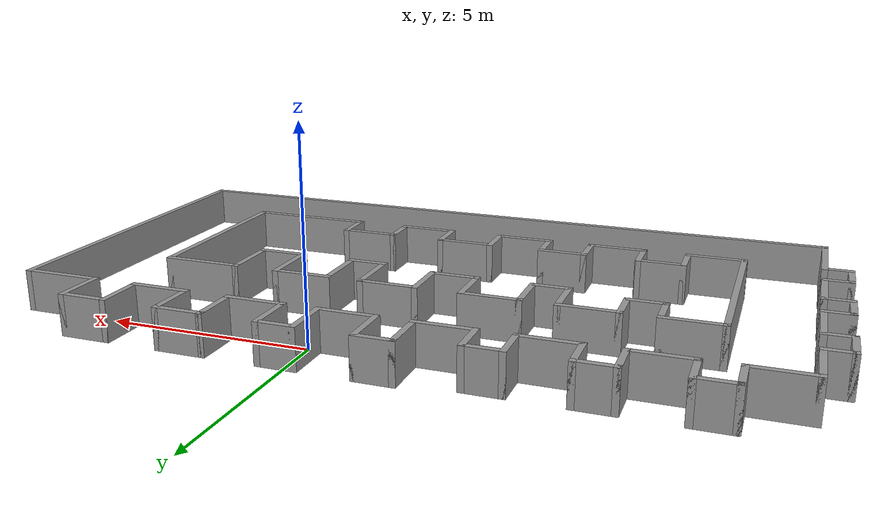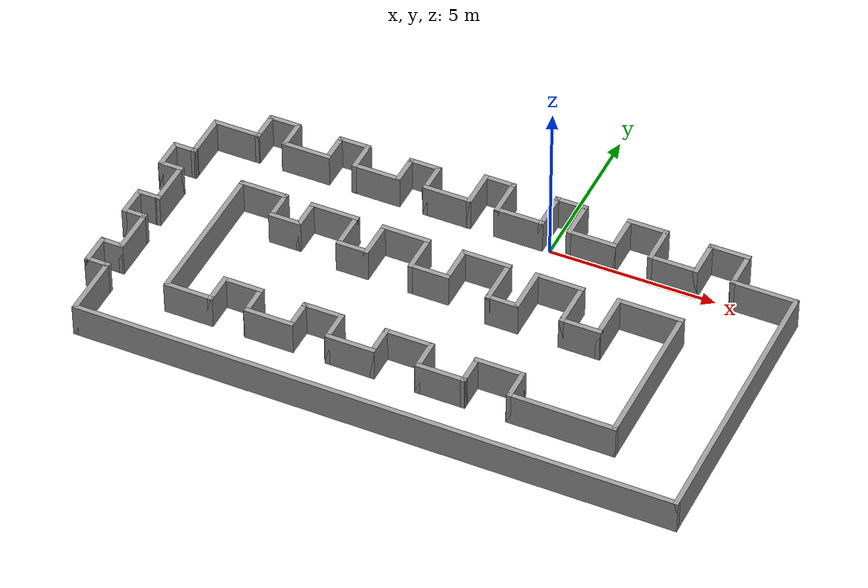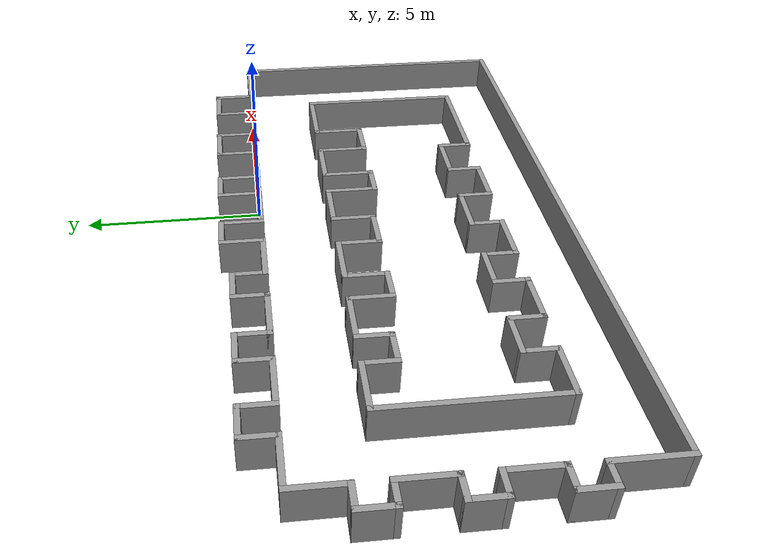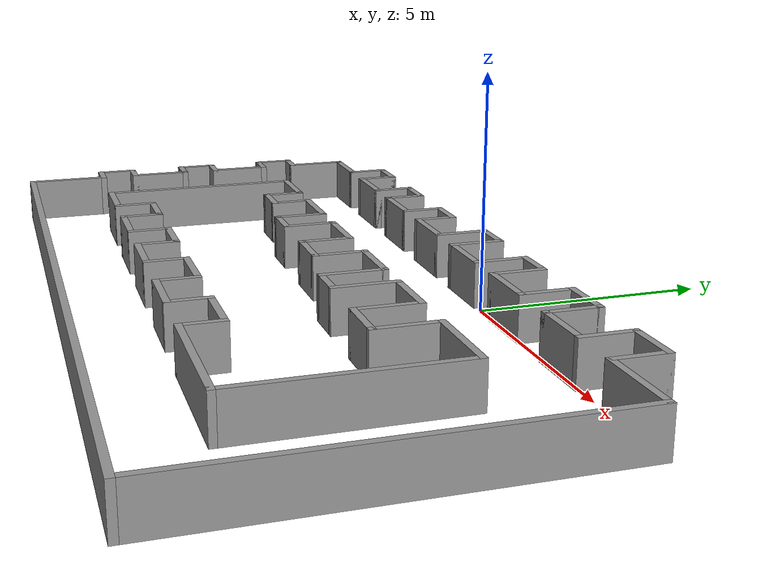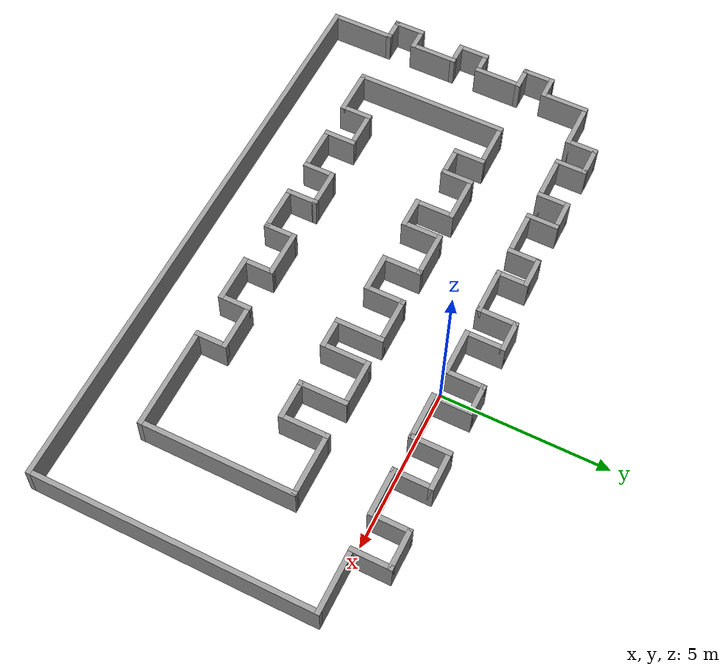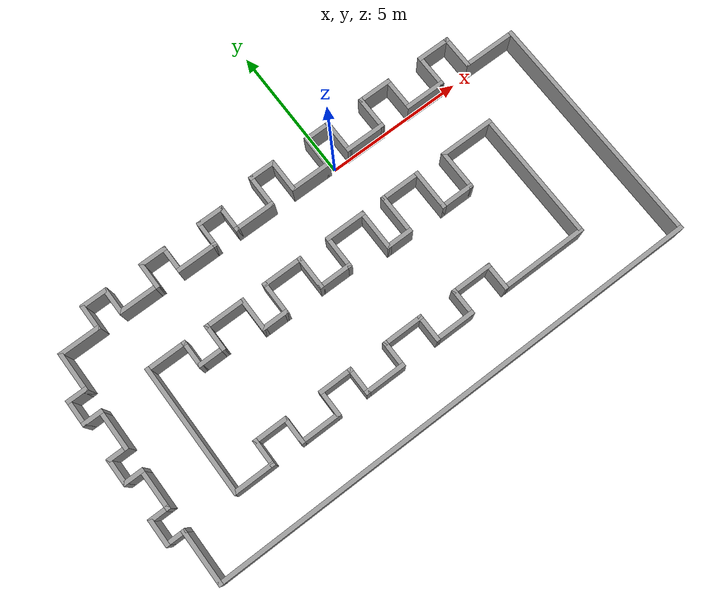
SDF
<?xml version='1.0'?>
<sdf version='1.6'>
  <model name='park'>
    <pose frame=''>-1.833 -3.683 0 0 -0 0</pose>
    <link name='Wall_1'>
      <collision name='Wall_1_Collision'>
        <geometry>
          <box>
            <size>17.9 0.15 1</size>
          </box>
        </geometry>
        <pose frame=''>0 0 0.5 0 -0 0</pose>
      </collision>
      <visual name='Wall_1_Visual'>
        <pose frame=''>0 0 0.5 0 -0 0</pose>
        <geometry>
          <box>
            <size>17.9 0.15 1</size>
          </box>
        </geometry>
        <material>
          <script>
            <uri>file://media/materials/scripts/gazebo.material</uri>
            <name>Gazebo/Grey</name>
          </script>
          <ambient>1 1 1 1</ambient>
        </material>
        <meta>
          <layer>0</layer>
        </meta>
      </visual>
      <pose frame=''>0.3 -4.775 0 0 -0 0</pose>
    </link>
    <link name='Wall_10'>
      <collision name='Wall_10_Collision'>
        <geometry>
          <box>
            <size>0.75 0.15 1.0</size>
          </box>
        </geometry>
        <pose frame=''>0 0 0.5 0 -0 0</pose>
      </collision>
      <visual name='Wall_10_Visual'>
        <pose frame=''>0 0 0.5 0 -0 0</pose>
        <geometry>
          <box>
            <size>0.75 0.15 1.0</size>
          </box>
        </geometry>
        <material>
          <script>
            <uri>file://media/materials/scripts/gazebo.material</uri>
            <name>Gazebo/Grey</name>
          </script>
          <ambient>1 1 1 1</ambient>
        </material>
        <meta>
          <layer>0</layer>
        </meta>
      </visual>
      <pose frame=''>-8.875 -2.075 0 0 -0 0</pose>
    </link>
    <link name='Wall_100'>
      <collision name='Wall_100_Collision'>
        <geometry>
          <box>
            <size>1.5 0.15 1.0</size>
          </box>
        </geometry>
        <pose frame=''>0 0 0.5 0 -0 0</pose>
      </collision>
      <visual name='Wall_100_Visual'>
        <pose frame=''>0 0 0.5 0 -0 0</pose>
        <geometry>
          <box>
            <size>1.5 0.15 1.0</size>
          </box>
        </geometry>
        <material>
          <script>
            <uri>file://media/materials/scripts/gazebo.material</uri>
            <name>Gazebo/Grey</name>
          </script>
          <ambient>1 1 1 1</ambient>
        </material>
        <meta>
          <layer>0</layer>
        </meta>
      </visual>
      <pose frame=''>3.675 1 0 0 -0 -1.5708</pose>
    </link>
    <link name='Wall_101'>
      <collision name='Wall_101_Collision'>
        <geometry>
          <box>
            <size>1.25 0.15 1.0</size>
          </box>
        </geometry>
        <pose frame=''>0 0 0.5 0 -0 0</pose>
      </collision>
      <visual name='Wall_101_Visual'>
        <pose frame=''>0 0 0.5 0 -0 0</pose>
        <geometry>
          <box>
            <size>1.25 0.15 1.0</size>
          </box>
        </geometry>
        <material>
          <script>
            <uri>file://media/materials/scripts/gazebo.material</uri>
            <name>Gazebo/Grey</name>
          </script>
          <ambient>1 1 1 1</ambient>
        </material>
        <meta>
          <layer>0</layer>
        </meta>
      </visual>
      <pose frame=''>4.225 0.325 0 0 -0 0</pose>
    </link>
    <link name='Wall_102'>
      <collision name='Wall_102_Collision'>
        <geometry>
          <box>
            <size>1.5 0.15 1.0</size>
          </box>
        </geometry>
        <pose frame=''>0 0 0.5 0 -0 0</pose>
      </collision>
      <visual name='Wall_102_Visual'>
        <pose frame=''>0 0 0.5 0 -0 0</pose>
        <geometry>
          <box>
            <size>1.5 0.15 1.0</size>
          </box>
        </geometry>
        <material>
          <script>
            <uri>file://media/materials/scripts/gazebo.material</uri>
            <name>Gazebo/Grey</name>
          </script>
          <ambient>1 1 1 1</ambient>
        </material>
        <meta>
          <layer>0</layer>
        </meta>
      </visual>
      <pose frame=''>4.775 1 0 0 -0 1.5708</pose>
    </link>
    <link name='Wall_103'>
      <collision name='Wall_103_Collision'>
        <geometry>
          <box>
            <size>2 0.15 1.0</size>
          </box>
        </geometry>
        <pose frame=''>0 0 0.5 0 -0 0</pose>
      </collision>
      <visual name='Wall_103_Visual'>
        <pose frame=''>0 0 0.5 0 -0 0</pose>
        <geometry>
          <box>
            <size>2 0.15 1.0</size>
          </box>
        </geometry>
        <material>
          <script>
            <uri>file://media/materials/scripts/gazebo.material</uri>
            <name>Gazebo/Grey</name>
          </script>
          <ambient>1 1 1 1</ambient>
        </material>
        <meta>
          <layer>0</layer>
        </meta>
      </visual>
      <pose frame=''>5.7 1.675 0 0 -0 0</pose>
    </link>
    <link name='Wall_11'>
      <collision name='Wall_11_Collision'>
        <geometry>
          <box>
            <size>1.5 0.15 1.0</size>
          </box>
        </geometry>
        <pose frame=''>0 0 0.5 0 -0 0</pose>
      </collision>
      <visual name='Wall_11_Visual'>
        <pose frame=''>0 0 0.5 0 -0 0</pose>
        <geometry>
          <box>
            <size>1.5 0.15 1.0</size>
          </box>
        </geometry>
        <material>
          <script>
            <uri>file://media/materials/scripts/gazebo.material</uri>
            <name>Gazebo/Grey</name>
          </script>
          <ambient>1 1 1 1</ambient>
        </material>
        <meta>
          <layer>0</layer>
        </meta>
      </visual>
      <pose frame=''>-8.575 -1.4 0 0 -0 1.5708</pose>
    </link>
    <link name='Wall_12'>
      <collision name='Wall_12_Collision'>
        <geometry>
          <box>
            <size>0.75 0.15 1.0</size>
          </box>
        </geometry>
        <pose frame=''>0 0 0.5 0 -0 0</pose>
      </collision>
      <visual name='Wall_12_Visual'>
        <pose frame=''>0 0 0.5 0 -0 0</pose>
        <geometry>
          <box>
            <size>0.75 0.15 1.0</size>
          </box>
        </geometry>
        <material>
          <script>
            <uri>file://media/materials/scripts/gazebo.material</uri>
            <name>Gazebo/Grey</name>
          </script>
          <ambient>1 1 1 1</ambient>
        </material>
        <meta>
          <layer>0</layer>
        </meta>
      </visual>
      <pose frame=''>-8.875 -0.725 0 0 -0 3.14159</pose>
    </link>
    <link name='Wall_13'>
      <collision name='Wall_13_Collision'>
        <geometry>
          <box>
            <size>1 0.15 1.0</size>
          </box>
        </geometry>
        <pose frame=''>0 0 0.5 0 -0 0</pose>
      </collision>
      <visual name='Wall_13_Visual'>
        <pose frame=''>0 0 0.5 0 -0 0</pose>
        <geometry>
          <box>
            <size>1 0.15 1.0</size>
          </box>
        </geometry>
        <material>
          <script>
            <uri>file://media/materials/scripts/gazebo.material</uri>
            <name>Gazebo/Grey</name>
          </script>
          <ambient>1 1 1 1</ambient>
        </material>
        <meta>
          <layer>0</layer>
        </meta>
      </visual>
      <pose frame=''>-9.175 -0.3 0 0 -0 1.5708</pose>
    </link>
    <link name='Wall_14'>
      <collision name='Wall_14_Collision'>
        <geometry>
          <box>
            <size>0.75 0.15 1.0</size>
          </box>
        </geometry>
        <pose frame=''>0 0 0.5 0 -0 0</pose>
      </collision>
      <visual name='Wall_14_Visual'>
        <pose frame=''>0 0 0.5 0 -0 0</pose>
        <geometry>
          <box>
            <size>0.75 0.15 1.0</size>
          </box>
        </geometry>
        <material>
          <script>
            <uri>file://media/materials/scripts/gazebo.material</uri>
            <name>Gazebo/Grey</name>
          </script>
          <ambient>1 1 1 1</ambient>
        </material>
        <meta>
          <layer>0</layer>
        </meta>
      </visual>
      <pose frame=''>-8.875 0.125 0 0 -0 0</pose>
    </link>
    <link name='Wall_15'>
      <collision name='Wall_15_Collision'>
        <geometry>
          <box>
            <size>1.5 0.15 1.0</size>
          </box>
        </geometry>
        <pose frame=''>0 0 0.5 0 -0 0</pose>
      </collision>
      <visual name='Wall_15_Visual'>
        <pose frame=''>0 0 0.5 0 -0 0</pose>
        <geometry>
          <box>
            <size>1.5 0.15 1.0</size>
          </box>
        </geometry>
        <material>
          <script>
            <uri>file://media/materials/scripts/gazebo.material</uri>
            <name>Gazebo/Grey</name>
          </script>
          <ambient>1 1 1 1</ambient>
        </material>
        <meta>
          <layer>0</layer>
        </meta>
      </visual>
      <pose frame=''>-8.575 0.800001 0 0 -0 1.5708</pose>
    </link>
    <link name='Wall_17'>
      <collision name='Wall_17_Collision'>
        <geometry>
          <box>
            <size>0.75 0.15 1.0</size>
          </box>
        </geometry>
        <pose frame=''>0 0 0.5 0 -0 0</pose>
      </collision>
      <visual name='Wall_17_Visual'>
        <pose frame=''>0 0 0.5 0 -0 0</pose>
        <geometry>
          <box>
            <size>0.75 0.15 1.0</size>
          </box>
        </geometry>
        <material>
          <script>
            <uri>file://media/materials/scripts/gazebo.material</uri>
            <name>Gazebo/Grey</name>
          </script>
          <ambient>1 1 1 1</ambient>
        </material>
        <meta>
          <layer>0</layer>
        </meta>
      </visual>
      <pose frame=''>-8.875 1.475 0 0 -0 3.14159</pose>
    </link>
    <link name='Wall_18'>
      <collision name='Wall_18_Collision'>
        <geometry>
          <box>
            <size>1 0.15 1.0</size>
          </box>
        </geometry>
        <pose frame=''>0 0 0.5 0 -0 0</pose>
      </collision>
      <visual name='Wall_18_Visual'>
        <pose frame=''>0 0 0.5 0 -0 0</pose>
        <geometry>
          <box>
            <size>1 0.15 1.0</size>
          </box>
        </geometry>
        <material>
          <script>
            <uri>file://media/materials/scripts/gazebo.material</uri>
            <name>Gazebo/Grey</name>
          </script>
          <ambient>1 1 1 1</ambient>
        </material>
        <meta>
          <layer>0</layer>
        </meta>
      </visual>
      <pose frame=''>-9.175 1.9 0 0 -0 1.5708</pose>
    </link>
    <link name='Wall_19'>
      <collision name='Wall_19_Collision'>
        <geometry>
          <box>
            <size>0.75 0.15 1.0</size>
          </box>
        </geometry>
        <pose frame=''>0 0 0.5 0 -0 0</pose>
      </collision>
      <visual name='Wall_19_Visual'>
        <pose frame=''>0 0 0.5 0 -0 0</pose>
        <geometry>
          <box>
            <size>0.75 0.15 1.0</size>
          </box>
        </geometry>
        <material>
          <script>
            <uri>file://media/materials/scripts/gazebo.material</uri>
            <name>Gazebo/Grey</name>
          </script>
          <ambient>1 1 1 1</ambient>
        </material>
        <meta>
          <layer>0</layer>
        </meta>
      </visual>
      <pose frame=''>-8.875 2.325 0 0 -0 0</pose>
    </link>
    <link name='Wall_20'>
      <collision name='Wall_20_Collision'>
        <geometry>
          <box>
            <size>1.5 0.15 1.0</size>
          </box>
        </geometry>
        <pose frame=''>0 0 0.5 0 -0 0</pose>
      </collision>
      <visual name='Wall_20_Visual'>
        <pose frame=''>0 0 0.5 0 -0 0</pose>
        <geometry>
          <box>
            <size>1.5 0.15 1.0</size>
          </box>
        </geometry>
        <material>
          <script>
            <uri>file://media/materials/scripts/gazebo.material</uri>
            <name>Gazebo/Grey</name>
          </script>
          <ambient>1 1 1 1</ambient>
        </material>
        <meta>
          <layer>0</layer>
        </meta>
      </visual>
      <pose frame=''>-8.575 3 0 0 -0 1.5708</pose>
    </link>
    <link name='Wall_21'>
      <collision name='Wall_21_Collision'>
        <geometry>
          <box>
            <size>1.5 0.15 1.0</size>
          </box>
        </geometry>
        <pose frame=''>0 0 0.5 0 -0 0</pose>
      </collision>
      <visual name='Wall_21_Visual'>
        <pose frame=''>0 0 0.5 0 -0 0</pose>
        <geometry>
          <box>
            <size>1.5 0.15 1.0</size>
          </box>
        </geometry>
        <material>
          <script>
            <uri>file://media/materials/scripts/gazebo.material</uri>
            <name>Gazebo/Grey</name>
          </script>
          <ambient>1 1 1 1</ambient>
        </material>
        <meta>
          <layer>0</layer>
        </meta>
      </visual>
      <pose frame=''>-7.9 3.675 0 0 -0 0</pose>
    </link>
    <link name='Wall_22'>
      <collision name='Wall_22_Collision'>
        <geometry>
          <box>
            <size>1 0.15 1.0</size>
          </box>
        </geometry>
        <pose frame=''>0 0 0.5 0 -0 0</pose>
      </collision>
      <visual name='Wall_22_Visual'>
        <pose frame=''>0 0 0.5 0 -0 0</pose>
        <geometry>
          <box>
            <size>1 0.15 1.0</size>
          </box>
        </geometry>
        <material>
          <script>
            <uri>file://media/materials/scripts/gazebo.material</uri>
            <name>Gazebo/Grey</name>
          </script>
          <ambient>1 1 1 1</ambient>
        </material>
        <meta>
          <layer>0</layer>
        </meta>
      </visual>
      <pose frame=''>-7.225 4.1 0 0 -0 1.5708</pose>
    </link>
    <link name='Wall_23'>
      <collision name='Wall_23_Collision'>
        <geometry>
          <box>
            <size>1 0.15 1.0</size>
          </box>
        </geometry>
        <pose frame=''>0 0 0.5 0 -0 0</pose>
      </collision>
      <visual name='Wall_23_Visual'>
        <pose frame=''>0 0 0.5 0 -0 0</pose>
        <geometry>
          <box>
            <size>1 0.15 1.0</size>
          </box>
        </geometry>
        <material>
          <script>
            <uri>file://media/materials/scripts/gazebo.material</uri>
            <name>Gazebo/Grey</name>
          </script>
          <ambient>1 1 1 1</ambient>
        </material>
        <meta>
          <layer>0</layer>
        </meta>
      </visual>
      <pose frame=''>-6.8 4.525 0 0 -0 0</pose>
    </link>
    <link name='Wall_24'>
      <collision name='Wall_24_Collision'>
        <geometry>
          <box>
            <size>1 0.15 1.0</size>
          </box>
        </geometry>
        <pose frame=''>0 0 0.5 0 -0 0</pose>
      </collision>
      <visual name='Wall_24_Visual'>
        <pose frame=''>0 0 0.5 0 -0 0</pose>
        <geometry>
          <box>
            <size>1 0.15 1.0</size>
          </box>
        </geometry>
        <material>
          <script>
            <uri>file://media/materials/scripts/gazebo.material</uri>
            <name>Gazebo/Grey</name>
          </script>
          <ambient>1 1 1 1</ambient>
        </material>
        <meta>
          <layer>0</layer>
        </meta>
      </visual>
      <pose frame=''>-6.375 4.1 0 0 -0 -1.5708</pose>
    </link>
    <link name='Wall_25'>
      <collision name='Wall_25_Collision'>
        <geometry>
          <box>
            <size>1.5 0.15 1.0</size>
          </box>
        </geometry>
        <pose frame=''>0 0 0.5 0 -0 0</pose>
      </collision>
      <visual name='Wall_25_Visual'>
        <pose frame=''>0 0 0.5 0 -0 0</pose>
        <geometry>
          <box>
            <size>1.5 0.15 1.0</size>
          </box>
        </geometry>
        <material>
          <script>
            <uri>file://media/materials/scripts/gazebo.material</uri>
            <name>Gazebo/Grey</name>
          </script>
          <ambient>1 1 1 1</ambient>
        </material>
        <meta>
          <layer>0</layer>
        </meta>
      </visual>
      <pose frame=''>-5.7 3.675 0 0 -0 0</pose>
    </link>
    <link name='Wall_27'>
      <collision name='Wall_27_Collision'>
        <geometry>
          <box>
            <size>1 0.15 1.0</size>
          </box>
        </geometry>
        <pose frame=''>0 0 0.5 0 -0 0</pose>
      </collision>
      <visual name='Wall_27_Visual'>
        <pose frame=''>0 0 0.5 0 -0 0</pose>
        <geometry>
          <box>
            <size>1 0.15 1.0</size>
          </box>
        </geometry>
        <material>
          <script>
            <uri>file://media/materials/scripts/gazebo.material</uri>
            <name>Gazebo/Grey</name>
          </script>
          <ambient>1 1 1 1</ambient>
        </material>
        <meta>
          <layer>0</layer>
        </meta>
      </visual>
      <pose frame=''>-5.025 4.1 0 0 -0 1.5708</pose>
    </link>
    <link name='Wall_28'>
      <collision name='Wall_28_Collision'>
        <geometry>
          <box>
            <size>1 0.15 1.0</size>
          </box>
        </geometry>
        <pose frame=''>0 0 0.5 0 -0 0</pose>
      </collision>
      <visual name='Wall_28_Visual'>
        <pose frame=''>0 0 0.5 0 -0 0</pose>
        <geometry>
          <box>
            <size>1 0.15 1.0</size>
          </box>
        </geometry>
        <material>
          <script>
            <uri>file://media/materials/scripts/gazebo.material</uri>
            <name>Gazebo/Grey</name>
          </script>
          <ambient>1 1 1 1</ambient>
        </material>
        <meta>
          <layer>0</layer>
        </meta>
      </visual>
      <pose frame=''>-4.6 4.525 0 0 -0 0</pose>
    </link>
    <link name='Wall_29'>
      <collision name='Wall_29_Collision'>
        <geometry>
          <box>
            <size>1 0.15 1.0</size>
          </box>
        </geometry>
        <pose frame=''>0 0 0.5 0 -0 0</pose>
      </collision>
      <visual name='Wall_29_Visual'>
        <pose frame=''>0 0 0.5 0 -0 0</pose>
        <geometry>
          <box>
            <size>1 0.15 1.0</size>
          </box>
        </geometry>
        <material>
          <script>
            <uri>file://media/materials/scripts/gazebo.material</uri>
            <name>Gazebo/Grey</name>
          </script>
          <ambient>1 1 1 1</ambient>
        </material>
        <meta>
          <layer>0</layer>
        </meta>
      </visual>
      <pose frame=''>-4.175 4.1 0 0 -0 -1.5708</pose>
    </link>
    <link name='Wall_30'>
      <collision name='Wall_30_Collision'>
        <geometry>
          <box>
            <size>1.5 0.15 1.0</size>
          </box>
        </geometry>
        <pose frame=''>0 0 0.5 0 -0 0</pose>
      </collision>
      <visual name='Wall_30_Visual'>
        <pose frame=''>0 0 0.5 0 -0 0</pose>
        <geometry>
          <box>
            <size>1.5 0.15 1.0</size>
          </box>
        </geometry>
        <material>
          <script>
            <uri>file://media/materials/scripts/gazebo.material</uri>
            <name>Gazebo/Grey</name>
          </script>
          <ambient>1 1 1 1</ambient>
        </material>
        <meta>
          <layer>0</layer>
        </meta>
      </visual>
      <pose frame=''>-3.5 3.675 0 0 -0 0</pose>
    </link>
    <link name='Wall_31'>
      <collision name='Wall_31_Collision'>
        <geometry>
          <box>
            <size>1 0.15 1.0</size>
          </box>
        </geometry>
        <pose frame=''>0 0 0.5 0 -0 0</pose>
      </collision>
      <visual name='Wall_31_Visual'>
        <pose frame=''>0 0 0.5 0 -0 0</pose>
        <geometry>
          <box>
            <size>1 0.15 1.0</size>
          </box>
        </geometry>
        <material>
          <script>
            <uri>file://media/materials/scripts/gazebo.material</uri>
            <name>Gazebo/Grey</name>
          </script>
          <ambient>1 1 1 1</ambient>
        </material>
        <meta>
          <layer>0</layer>
        </meta>
      </visual>
      <pose frame=''>-2.825 4.1 0 0 -0 1.5708</pose>
    </link>
    <link name='Wall_32'>
      <collision name='Wall_32_Collision'>
        <geometry>
          <box>
            <size>1 0.15 1.0</size>
          </box>
        </geometry>
        <pose frame=''>0 0 0.5 0 -0 0</pose>
      </collision>
      <visual name='Wall_32_Visual'>
        <pose frame=''>0 0 0.5 0 -0 0</pose>
        <geometry>
          <box>
            <size>1 0.15 1.0</size>
          </box>
        </geometry>
        <material>
          <script>
            <uri>file://media/materials/scripts/gazebo.material</uri>
            <name>Gazebo/Grey</name>
          </script>
          <ambient>1 1 1 1</ambient>
        </material>
        <meta>
          <layer>0</layer>
        </meta>
      </visual>
      <pose frame=''>-2.4 4.525 0 0 -0 0</pose>
    </link>
    <link name='Wall_33'>
      <collision name='Wall_33_Collision'>
        <geometry>
          <box>
            <size>1 0.15 1.0</size>
          </box>
        </geometry>
        <pose frame=''>0 0 0.5 0 -0 0</pose>
      </collision>
      <visual name='Wall_33_Visual'>
        <pose frame=''>0 0 0.5 0 -0 0</pose>
        <geometry>
          <box>
            <size>1 0.15 1.0</size>
          </box>
        </geometry>
        <material>
          <script>
            <uri>file://media/materials/scripts/gazebo.material</uri>
            <name>Gazebo/Grey</name>
          </script>
          <ambient>1 1 1 1</ambient>
        </material>
        <meta>
          <layer>0</layer>
        </meta>
      </visual>
      <pose frame=''>-1.975 4.1 0 0 -0 -1.5708</pose>
    </link>
    <link name='Wall_34'>
      <collision name='Wall_34_Collision'>
        <geometry>
          <box>
            <size>1.5 0.15 1.0</size>
          </box>
        </geometry>
        <pose frame=''>0 0 0.5 0 -0 0</pose>
      </collision>
      <visual name='Wall_34_Visual'>
        <pose frame=''>0 0 0.5 0 -0 0</pose>
        <geometry>
          <box>
            <size>1.5 0.15 1.0</size>
          </box>
        </geometry>
        <material>
          <script>
            <uri>file://media/materials/scripts/gazebo.material</uri>
            <name>Gazebo/Grey</name>
          </script>
          <ambient>1 1 1 1</ambient>
        </material>
        <meta>
          <layer>0</layer>
        </meta>
      </visual>
      <pose frame=''>-1.3 3.675 0 0 -0 0</pose>
    </link>
    <link name='Wall_35'>
      <collision name='Wall_35_Collision'>
        <geometry>
          <box>
            <size>1.25 0.15 1.0</size>
          </box>
        </geometry>
        <pose frame=''>0 0 0.5 0 -0 0</pose>
      </collision>
      <visual name='Wall_35_Visual'>
        <pose frame=''>0 0 0.5 0 -0 0</pose>
        <geometry>
          <box>
            <size>1.25 0.15 1.0</size>
          </box>
        </geometry>
        <material>
          <script>
            <uri>file://media/materials/scripts/gazebo.material</uri>
            <name>Gazebo/Grey</name>
          </script>
          <ambient>1 1 1 1</ambient>
        </material>
        <meta>
          <layer>0</layer>
        </meta>
      </visual>
      <pose frame=''>-0.625 4.225 0 0 -0 1.5708</pose>
    </link>
    <link name='Wall_36'>
      <collision name='Wall_36_Collision'>
        <geometry>
          <box>
            <size>1 0.15 1.0</size>
          </box>
        </geometry>
        <pose frame=''>0 0 0.5 0 -0 0</pose>
      </collision>
      <visual name='Wall_36_Visual'>
        <pose frame=''>0 0 0.5 0 -0 0</pose>
        <geometry>
          <box>
            <size>1 0.15 1.0</size>
          </box>
        </geometry>
        <material>
          <script>
            <uri>file://media/materials/scripts/gazebo.material</uri>
            <name>Gazebo/Grey</name>
          </script>
          <ambient>1 1 1 1</ambient>
        </material>
        <meta>
          <layer>0</layer>
        </meta>
      </visual>
      <pose frame=''>-0.2 4.775 0 0 -0 0</pose>
    </link>
    <link name='Wall_37'>
      <collision name='Wall_37_Collision'>
        <geometry>
          <box>
            <size>1.25 0.15 1.0</size>
          </box>
        </geometry>
        <pose frame=''>0 0 0.5 0 -0 0</pose>
      </collision>
      <visual name='Wall_37_Visual'>
        <pose frame=''>0 0 0.5 0 -0 0</pose>
        <geometry>
          <box>
            <size>1.25 0.15 1.0</size>
          </box>
        </geometry>
        <material>
          <script>
            <uri>file://media/materials/scripts/gazebo.material</uri>
            <name>Gazebo/Grey</name>
          </script>
          <ambient>1 1 1 1</ambient>
        </material>
        <meta>
          <layer>0</layer>
        </meta>
      </visual>
      <pose frame=''>0.225 4.225 0 0 -0 -1.5708</pose>
    </link>
    <link name='Wall_38'>
      <collision name='Wall_38_Collision'>
        <geometry>
          <box>
            <size>1.5 0.15 1.0</size>
          </box>
        </geometry>
        <pose frame=''>0 0 0.5 0 -0 0</pose>
      </collision>
      <visual name='Wall_38_Visual'>
        <pose frame=''>0 0 0.5 0 -0 0</pose>
        <geometry>
          <box>
            <size>1.5 0.15 1.0</size>
          </box>
        </geometry>
        <material>
          <script>
            <uri>file://media/materials/scripts/gazebo.material</uri>
            <name>Gazebo/Grey</name>
          </script>
          <ambient>1 1 1 1</ambient>
        </material>
        <meta>
          <layer>0</layer>
        </meta>
      </visual>
      <pose frame=''>0.9 3.675 0 0 -0 0</pose>
    </link>
    <link name='Wall_39'>
      <collision name='Wall_39_Collision'>
        <geometry>
          <box>
            <size>1.25 0.15 1.0</size>
          </box>
        </geometry>
        <pose frame=''>0 0 0.5 0 -0 0</pose>
      </collision>
      <visual name='Wall_39_Visual'>
        <pose frame=''>0 0 0.5 0 -0 0</pose>
        <geometry>
          <box>
            <size>1.25 0.15 1.0</size>
          </box>
        </geometry>
        <material>
          <script>
            <uri>file://media/materials/scripts/gazebo.material</uri>
            <name>Gazebo/Grey</name>
          </script>
          <ambient>1 1 1 1</ambient>
        </material>
        <meta>
          <layer>0</layer>
        </meta>
      </visual>
      <pose frame=''>1.575 4.225 0 0 -0 1.5708</pose>
    </link>
    <link name='Wall_40'>
      <collision name='Wall_40_Collision'>
        <geometry>
          <box>
            <size>1 0.15 1.0</size>
          </box>
        </geometry>
        <pose frame=''>0 0 0.5 0 -0 0</pose>
      </collision>
      <visual name='Wall_40_Visual'>
        <pose frame=''>0 0 0.5 0 -0 0</pose>
        <geometry>
          <box>
            <size>1 0.15 1.0</size>
          </box>
        </geometry>
        <material>
          <script>
            <uri>file://media/materials/scripts/gazebo.material</uri>
            <name>Gazebo/Grey</name>
          </script>
          <ambient>1 1 1 1</ambient>
        </material>
        <meta>
          <layer>0</layer>
        </meta>
      </visual>
      <pose frame=''>2 4.775 0 0 -0 0</pose>
    </link>
    <link name='Wall_41'>
      <collision name='Wall_41_Collision'>
        <geometry>
          <box>
            <size>1.25 0.15 1.0</size>
          </box>
        </geometry>
        <pose frame=''>0 0 0.5 0 -0 0</pose>
      </collision>
      <visual name='Wall_41_Visual'>
        <pose frame=''>0 0 0.5 0 -0 0</pose>
        <geometry>
          <box>
            <size>1.25 0.15 1.0</size>
          </box>
        </geometry>
        <material>
          <script>
            <uri>file://media/materials/scripts/gazebo.material</uri>
            <name>Gazebo/Grey</name>
          </script>
          <ambient>1 1 1 1</ambient>
        </material>
        <meta>
          <layer>0</layer>
        </meta>
      </visual>
      <pose frame=''>2.425 4.225 0 0 -0 -1.5708</pose>
    </link>
    <link name='Wall_42'>
      <collision name='Wall_42_Collision'>
        <geometry>
          <box>
            <size>1.5 0.15 1.0</size>
          </box>
        </geometry>
        <pose frame=''>0 0 0.5 0 -0 0</pose>
      </collision>
      <visual name='Wall_42_Visual'>
        <pose frame=''>0 0 0.5 0 -0 0</pose>
        <geometry>
          <box>
            <size>1.5 0.15 1.0</size>
          </box>
        </geometry>
        <material>
          <script>
            <uri>file://media/materials/scripts/gazebo.material</uri>
            <name>Gazebo/Grey</name>
          </script>
          <ambient>1 1 1 1</ambient>
        </material>
        <meta>
          <layer>0</layer>
        </meta>
      </visual>
      <pose frame=''>3.1 3.675 0 0 -0 0</pose>
    </link>
    <link name='Wall_43'>
      <collision name='Wall_43_Collision'>
        <geometry>
          <box>
            <size>1.25 0.15 1.0</size>
          </box>
        </geometry>
        <pose frame=''>0 0 0.5 0 -0 0</pose>
      </collision>
      <visual name='Wall_43_Visual'>
        <pose frame=''>0 0 0.5 0 -0 0</pose>
        <geometry>
          <box>
            <size>1.25 0.15 1.0</size>
          </box>
        </geometry>
        <material>
          <script>
            <uri>file://media/materials/scripts/gazebo.material</uri>
            <name>Gazebo/Grey</name>
          </script>
          <ambient>1 1 1 1</ambient>
        </material>
        <meta>
          <layer>0</layer>
        </meta>
      </visual>
      <pose frame=''>3.775 4.225 0 0 -0 1.5708</pose>
    </link>
    <link name='Wall_44'>
      <collision name='Wall_44_Collision'>
        <geometry>
          <box>
            <size>1.25 0.15 1.0</size>
          </box>
        </geometry>
        <pose frame=''>0 0 0.5 0 -0 0</pose>
      </collision>
      <visual name='Wall_44_Visual'>
        <pose frame=''>0 0 0.5 0 -0 0</pose>
        <geometry>
          <box>
            <size>1.25 0.15 1.0</size>
          </box>
        </geometry>
        <material>
          <script>
            <uri>file://media/materials/scripts/gazebo.material</uri>
            <name>Gazebo/Grey</name>
          </script>
          <ambient>1 1 1 1</ambient>
        </material>
        <meta>
          <layer>0</layer>
        </meta>
      </visual>
      <pose frame=''>4.325 4.775 0 0 -0 0</pose>
    </link>
    <link name='Wall_45'>
      <collision name='Wall_45_Collision'>
        <geometry>
          <box>
            <size>1.25 0.15 1.0</size>
          </box>
        </geometry>
        <pose frame=''>0 0 0.5 0 -0 0</pose>
      </collision>
      <visual name='Wall_45_Visual'>
        <pose frame=''>0 0 0.5 0 -0 0</pose>
        <geometry>
          <box>
            <size>1.25 0.15 1.0</size>
          </box>
        </geometry>
        <material>
          <script>
            <uri>file://media/materials/scripts/gazebo.material</uri>
            <name>Gazebo/Grey</name>
          </script>
          <ambient>1 1 1 1</ambient>
        </material>
        <meta>
          <layer>0</layer>
        </meta>
      </visual>
      <pose frame=''>4.875 4.225 0 0 -0 -1.5708</pose>
    </link>
    <link name='Wall_46'>
      <collision name='Wall_46_Collision'>
        <geometry>
          <box>
            <size>1.5 0.15 1.0</size>
          </box>
        </geometry>
        <pose frame=''>0 0 0.5 0 -0 0</pose>
      </collision>
      <visual name='Wall_46_Visual'>
        <pose frame=''>0 0 0.5 0 -0 0</pose>
        <geometry>
          <box>
            <size>1.5 0.15 1.0</size>
          </box>
        </geometry>
        <material>
          <script>
            <uri>file://media/materials/scripts/gazebo.material</uri>
            <name>Gazebo/Grey</name>
          </script>
          <ambient>1 1 1 1</ambient>
        </material>
        <meta>
          <layer>0</layer>
        </meta>
      </visual>
      <pose frame=''>5.55 3.675 0 0 -0 0</pose>
    </link>
    <link name='Wall_47'>
      <collision name='Wall_47_Collision'>
        <geometry>
          <box>
            <size>1.25 0.15 1.0</size>
          </box>
        </geometry>
        <pose frame=''>0 0 0.5 0 -0 0</pose>
      </collision>
      <visual name='Wall_47_Visual'>
        <pose frame=''>0 0 0.5 0 -0 0</pose>
        <geometry>
          <box>
            <size>1.25 0.15 1.0</size>
          </box>
        </geometry>
        <material>
          <script>
            <uri>file://media/materials/scripts/gazebo.material</uri>
            <name>Gazebo/Grey</name>
          </script>
          <ambient>1 1 1 1</ambient>
        </material>
        <meta>
          <layer>0</layer>
        </meta>
      </visual>
      <pose frame=''>6.225 4.225 0 0 -0 1.5708</pose>
    </link>
    <link name='Wall_48'>
      <collision name='Wall_48_Collision'>
        <geometry>
          <box>
            <size>1.25 0.15 1.0</size>
          </box>
        </geometry>
        <pose frame=''>0 0 0.5 0 -0 0</pose>
      </collision>
      <visual name='Wall_48_Visual'>
        <pose frame=''>0 0 0.5 0 -0 0</pose>
        <geometry>
          <box>
            <size>1.25 0.15 1.0</size>
          </box>
        </geometry>
        <material>
          <script>
            <uri>file://media/materials/scripts/gazebo.material</uri>
            <name>Gazebo/Grey</name>
          </script>
          <ambient>1 1 1 1</ambient>
        </material>
        <meta>
          <layer>0</layer>
        </meta>
      </visual>
      <pose frame=''>6.775 4.775 0 0 -0 0</pose>
    </link>
    <link name='Wall_49'>
      <collision name='Wall_49_Collision'>
        <geometry>
          <box>
            <size>1.25 0.15 1.0</size>
          </box>
        </geometry>
        <pose frame=''>0 0 0.5 0 -0 0</pose>
      </collision>
      <visual name='Wall_49_Visual'>
        <pose frame=''>0 0 0.5 0 -0 0</pose>
        <geometry>
          <box>
            <size>1.25 0.15 1.0</size>
          </box>
        </geometry>
        <material>
          <script>
            <uri>file://media/materials/scripts/gazebo.material</uri>
            <name>Gazebo/Grey</name>
          </script>
          <ambient>1 1 1 1</ambient>
        </material>
        <meta>
          <layer>0</layer>
        </meta>
      </visual>
      <pose frame=''>7.325 4.225 0 0 -0 -1.5708</pose>
    </link>
    <link name='Wall_50'>
      <collision name='Wall_50_Collision'>
        <geometry>
          <box>
            <size>2 0.15 1.0</size>
          </box>
        </geometry>
        <pose frame=''>0 0 0.5 0 -0 0</pose>
      </collision>
      <visual name='Wall_50_Visual'>
        <pose frame=''>0 0 0.5 0 -0 0</pose>
        <geometry>
          <box>
            <size>2 0.15 1.0</size>
          </box>
        </geometry>
        <material>
          <script>
            <uri>file://media/materials/scripts/gazebo.material</uri>
            <name>Gazebo/Grey</name>
          </script>
          <ambient>1 1 1 1</ambient>
        </material>
        <meta>
          <layer>0</layer>
        </meta>
      </visual>
      <pose frame=''>8.25 3.675 0 0 -0 0</pose>
    </link>
    <link name='Wall_55'>
      <collision name='Wall_55_Collision'>
        <geometry>
          <box>
            <size>1.5 0.15 1.0</size>
          </box>
        </geometry>
        <pose frame=''>0 0 0.5 0 -0 0</pose>
      </collision>
      <visual name='Wall_55_Visual'>
        <pose frame=''>0 0 0.5 0 -0 0</pose>
        <geometry>
          <box>
            <size>1.5 0.15 1.0</size>
          </box>
        </geometry>
        <material>
          <script>
            <uri>file://media/materials/scripts/gazebo.material</uri>
            <name>Gazebo/Grey</name>
          </script>
          <ambient>1 1 1 1</ambient>
        </material>
        <meta>
          <layer>0</layer>
        </meta>
      </visual>
      <pose frame=''>-6.05 -2.925 0 0 -0 0</pose>
    </link>
    <link name='Wall_56'>
      <collision name='Wall_56_Collision'>
        <geometry>
          <box>
            <size>1 0.15 1.0</size>
          </box>
        </geometry>
        <pose frame=''>0 0 0.5 0 -0 0</pose>
      </collision>
      <visual name='Wall_56_Visual'>
        <pose frame=''>0 0 0.5 0 -0 0</pose>
        <geometry>
          <box>
            <size>1 0.15 1.0</size>
          </box>
        </geometry>
        <material>
          <script>
            <uri>file://media/materials/scripts/gazebo.material</uri>
            <name>Gazebo/Grey</name>
          </script>
          <ambient>1 1 1 1</ambient>
        </material>
        <meta>
          <layer>0</layer>
        </meta>
      </visual>
      <pose frame=''>-5.375 -2.5 0 0 -0 1.5708</pose>
    </link>
    <link name='Wall_57'>
      <collision name='Wall_57_Collision'>
        <geometry>
          <box>
            <size>1.25 0.15 1.0</size>
          </box>
        </geometry>
        <pose frame=''>0 0 0.5 0 -0 0</pose>
      </collision>
      <visual name='Wall_57_Visual'>
        <pose frame=''>0 0 0.5 0 -0 0</pose>
        <geometry>
          <box>
            <size>1.25 0.15 1.0</size>
          </box>
        </geometry>
        <material>
          <script>
            <uri>file://media/materials/scripts/gazebo.material</uri>
            <name>Gazebo/Grey</name>
          </script>
          <ambient>1 1 1 1</ambient>
        </material>
        <meta>
          <layer>0</layer>
        </meta>
      </visual>
      <pose frame=''>-4.825 -2.075 0 0 -0 0</pose>
    </link>
    <link name='Wall_58'>
      <collision name='Wall_58_Collision'>
        <geometry>
          <box>
            <size>1 0.15 1.0</size>
          </box>
        </geometry>
        <pose frame=''>0 0 0.5 0 -0 0</pose>
      </collision>
      <visual name='Wall_58_Visual'>
        <pose frame=''>0 0 0.5 0 -0 0</pose>
        <geometry>
          <box>
            <size>1 0.15 1.0</size>
          </box>
        </geometry>
        <material>
          <script>
            <uri>file://media/materials/scripts/gazebo.material</uri>
            <name>Gazebo/Grey</name>
          </script>
          <ambient>1 1 1 1</ambient>
        </material>
        <meta>
          <layer>0</layer>
        </meta>
      </visual>
      <pose frame=''>-4.275 -2.5 0 0 -0 -1.5708</pose>
    </link>
    <link name='Wall_59'>
      <collision name='Wall_59_Collision'>
        <geometry>
          <box>
            <size>1.5 0.15 1.0</size>
          </box>
        </geometry>
        <pose frame=''>0 0 0.5 0 -0 0</pose>
      </collision>
      <visual name='Wall_59_Visual'>
        <pose frame=''>0 0 0.5 0 -0 0</pose>
        <geometry>
          <box>
            <size>1.5 0.15 1.0</size>
          </box>
        </geometry>
        <material>
          <script>
            <uri>file://media/materials/scripts/gazebo.material</uri>
            <name>Gazebo/Grey</name>
          </script>
          <ambient>1 1 1 1</ambient>
        </material>
        <meta>
          <layer>0</layer>
        </meta>
      </visual>
      <pose frame=''>-3.6 -2.925 0 0 -0 0</pose>
    </link>
    <link name='Wall_6'>
      <collision name='Wall_6_Collision'>
        <geometry>
          <box>
            <size>2 0.15 1</size>
          </box>
        </geometry>
        <pose frame=''>0 0 0.5 0 -0 0</pose>
      </collision>
      <visual name='Wall_6_Visual'>
        <pose frame=''>0 0 0.5 0 -0 0</pose>
        <geometry>
          <box>
            <size>2 0.15 1</size>
          </box>
        </geometry>
        <material>
          <script>
            <uri>file://media/materials/scripts/gazebo.material</uri>
            <name>Gazebo/Grey</name>
          </script>
          <ambient>1 1 1 1</ambient>
        </material>
        <meta>
          <layer>0</layer>
        </meta>
      </visual>
      <pose frame=''>-8.575 -3.85 0 0 -0 1.5708</pose>
    </link>
    <link name='Wall_60'>
      <collision name='Wall_60_Collision'>
        <geometry>
          <box>
            <size>1 0.15 1.0</size>
          </box>
        </geometry>
        <pose frame=''>0 0 0.5 0 -0 0</pose>
      </collision>
      <visual name='Wall_60_Visual'>
        <pose frame=''>0 0 0.5 0 -0 0</pose>
        <geometry>
          <box>
            <size>1 0.15 1.0</size>
          </box>
        </geometry>
        <material>
          <script>
            <uri>file://media/materials/scripts/gazebo.material</uri>
            <name>Gazebo/Grey</name>
          </script>
          <ambient>1 1 1 1</ambient>
        </material>
        <meta>
          <layer>0</layer>
        </meta>
      </visual>
      <pose frame=''>-2.925 -2.5 0 0 -0 1.5708</pose>
    </link>
    <link name='Wall_61'>
      <collision name='Wall_61_Collision'>
        <geometry>
          <box>
            <size>1.25 0.15 1.0</size>
          </box>
        </geometry>
        <pose frame=''>0 0 0.5 0 -0 0</pose>
      </collision>
      <visual name='Wall_61_Visual'>
        <pose frame=''>0 0 0.5 0 -0 0</pose>
        <geometry>
          <box>
            <size>1.25 0.15 1.0</size>
          </box>
        </geometry>
        <material>
          <script>
            <uri>file://media/materials/scripts/gazebo.material</uri>
            <name>Gazebo/Grey</name>
          </script>
          <ambient>1 1 1 1</ambient>
        </material>
        <meta>
          <layer>0</layer>
        </meta>
      </visual>
      <pose frame=''>-2.375 -2.075 0 0 -0 0</pose>
    </link>
    <link name='Wall_62'>
      <collision name='Wall_62_Collision'>
        <geometry>
          <box>
            <size>1 0.15 1.0</size>
          </box>
        </geometry>
        <pose frame=''>0 0 0.5 0 -0 0</pose>
      </collision>
      <visual name='Wall_62_Visual'>
        <pose frame=''>0 0 0.5 0 -0 0</pose>
        <geometry>
          <box>
            <size>1 0.15 1.0</size>
          </box>
        </geometry>
        <material>
          <script>
            <uri>file://media/materials/scripts/gazebo.material</uri>
            <name>Gazebo/Grey</name>
          </script>
          <ambient>1 1 1 1</ambient>
        </material>
        <meta>
          <layer>0</layer>
        </meta>
      </visual>
      <pose frame=''>-1.825 -2.5 0 0 -0 -1.5708</pose>
    </link>
    <link name='Wall_63'>
      <collision name='Wall_63_Collision'>
        <geometry>
          <box>
            <size>1.5 0.15 1.0</size>
          </box>
        </geometry>
        <pose frame=''>0 0 0.5 0 -0 0</pose>
      </collision>
      <visual name='Wall_63_Visual'>
        <pose frame=''>0 0 0.5 0 -0 0</pose>
        <geometry>
          <box>
            <size>1.5 0.15 1.0</size>
          </box>
        </geometry>
        <material>
          <script>
            <uri>file://media/materials/scripts/gazebo.material</uri>
            <name>Gazebo/Grey</name>
          </script>
          <ambient>1 1 1 1</ambient>
        </material>
        <meta>
          <layer>0</layer>
        </meta>
      </visual>
      <pose frame=''>-1.15 -2.925 0 0 -0 0</pose>
    </link>
    <link name='Wall_64'>
      <collision name='Wall_64_Collision'>
        <geometry>
          <box>
            <size>1 0.15 1.0</size>
          </box>
        </geometry>
        <pose frame=''>0 0 0.5 0 -0 0</pose>
      </collision>
      <visual name='Wall_64_Visual'>
        <pose frame=''>0 0 0.5 0 -0 0</pose>
        <geometry>
          <box>
            <size>1 0.15 1.0</size>
          </box>
        </geometry>
        <material>
          <script>
            <uri>file://media/materials/scripts/gazebo.material</uri>
            <name>Gazebo/Grey</name>
          </script>
          <ambient>1 1 1 1</ambient>
        </material>
        <meta>
          <layer>0</layer>
        </meta>
      </visual>
      <pose frame=''>-0.475 -2.5 0 0 -0 1.5708</pose>
    </link>
    <link name='Wall_65'>
      <collision name='Wall_65_Collision'>
        <geometry>
          <box>
            <size>1.5 0.15 1.0</size>
          </box>
        </geometry>
        <pose frame=''>0 0 0.5 0 -0 0</pose>
      </collision>
      <visual name='Wall_65_Visual'>
        <pose frame=''>0 0 0.5 0 -0 0</pose>
        <geometry>
          <box>
            <size>1.5 0.15 1.0</size>
          </box>
        </geometry>
        <material>
          <script>
            <uri>file://media/materials/scripts/gazebo.material</uri>
            <name>Gazebo/Grey</name>
          </script>
          <ambient>1 1 1 1</ambient>
        </material>
        <meta>
          <layer>0</layer>
        </meta>
      </visual>
      <pose frame=''>0.2 -2.075 0 0 -0 0</pose>
    </link>
    <link name='Wall_66'>
      <collision name='Wall_66_Collision'>
        <geometry>
          <box>
            <size>1 0.15 1.0</size>
          </box>
        </geometry>
        <pose frame=''>0 0 0.5 0 -0 0</pose>
      </collision>
      <visual name='Wall_66_Visual'>
        <pose frame=''>0 0 0.5 0 -0 0</pose>
        <geometry>
          <box>
            <size>1 0.15 1.0</size>
          </box>
        </geometry>
        <material>
          <script>
            <uri>file://media/materials/scripts/gazebo.material</uri>
            <name>Gazebo/Grey</name>
          </script>
          <ambient>1 1 1 1</ambient>
        </material>
        <meta>
          <layer>0</layer>
        </meta>
      </visual>
      <pose frame=''>0.875 -2.5 0 0 -0 -1.5708</pose>
    </link>
    <link name='Wall_67'>
      <collision name='Wall_67_Collision'>
        <geometry>
          <box>
            <size>1.5 0.15 1.0</size>
          </box>
        </geometry>
        <pose frame=''>0 0 0.5 0 -0 0</pose>
      </collision>
      <visual name='Wall_67_Visual'>
        <pose frame=''>0 0 0.5 0 -0 0</pose>
        <geometry>
          <box>
            <size>1.5 0.15 1.0</size>
          </box>
        </geometry>
        <material>
          <script>
            <uri>file://media/materials/scripts/gazebo.material</uri>
            <name>Gazebo/Grey</name>
          </script>
          <ambient>1 1 1 1</ambient>
        </material>
        <meta>
          <layer>0</layer>
        </meta>
      </visual>
      <pose frame=''>1.55 -2.925 0 0 -0 0</pose>
    </link>
    <link name='Wall_68'>
      <collision name='Wall_68_Collision'>
        <geometry>
          <box>
            <size>1 0.15 1.0</size>
          </box>
        </geometry>
        <pose frame=''>0 0 0.5 0 -0 0</pose>
      </collision>
      <visual name='Wall_68_Visual'>
        <pose frame=''>0 0 0.5 0 -0 0</pose>
        <geometry>
          <box>
            <size>1 0.15 1.0</size>
          </box>
        </geometry>
        <material>
          <script>
            <uri>file://media/materials/scripts/gazebo.material</uri>
            <name>Gazebo/Grey</name>
          </script>
          <ambient>1 1 1 1</ambient>
        </material>
        <meta>
          <layer>0</layer>
        </meta>
      </visual>
      <pose frame=''>2.225 -2.5 0 0 -0 1.5708</pose>
    </link>
    <link name='Wall_69'>
      <collision name='Wall_69_Collision'>
        <geometry>
          <box>
            <size>1.5 0.15 1.0</size>
          </box>
        </geometry>
        <pose frame=''>0 0 0.5 0 -0 0</pose>
      </collision>
      <visual name='Wall_69_Visual'>
        <pose frame=''>0 0 0.5 0 -0 0</pose>
        <geometry>
          <box>
            <size>1.5 0.15 1.0</size>
          </box>
        </geometry>
        <material>
          <script>
            <uri>file://media/materials/scripts/gazebo.material</uri>
            <name>Gazebo/Grey</name>
          </script>
          <ambient>1 1 1 1</ambient>
        </material>
        <meta>
          <layer>0</layer>
        </meta>
      </visual>
      <pose frame=''>2.9 -2.075 0 0 -0 0</pose>
    </link>
    <link name='Wall_7'>
      <collision name='Wall_7_Collision'>
        <geometry>
          <box>
            <size>0.75 0.15 1</size>
          </box>
        </geometry>
        <pose frame=''>0 0 0.5 0 -0 0</pose>
      </collision>
      <visual name='Wall_7_Visual'>
        <pose frame=''>0 0 0.5 0 -0 0</pose>
        <geometry>
          <box>
            <size>0.75 0.15 1</size>
          </box>
        </geometry>
        <material>
          <script>
            <uri>file://media/materials/scripts/gazebo.material</uri>
            <name>Gazebo/Grey</name>
          </script>
          <ambient>1 1 1 1</ambient>
        </material>
        <meta>
          <layer>0</layer>
        </meta>
      </visual>
      <pose frame=''>-8.875 -2.925 0 0 -0 3.14159</pose>
    </link>
    <link name='Wall_70'>
      <collision name='Wall_70_Collision'>
        <geometry>
          <box>
            <size>1 0.15 1.0</size>
          </box>
        </geometry>
        <pose frame=''>0 0 0.5 0 -0 0</pose>
      </collision>
      <visual name='Wall_70_Visual'>
        <pose frame=''>0 0 0.5 0 -0 0</pose>
        <geometry>
          <box>
            <size>1 0.15 1.0</size>
          </box>
        </geometry>
        <material>
          <script>
            <uri>file://media/materials/scripts/gazebo.material</uri>
            <name>Gazebo/Grey</name>
          </script>
          <ambient>1 1 1 1</ambient>
        </material>
        <meta>
          <layer>0</layer>
        </meta>
      </visual>
      <pose frame=''>3.575 -2.5 0 0 -0 -1.5708</pose>
    </link>
    <link name='Wall_71'>
      <collision name='Wall_71_Collision'>
        <geometry>
          <box>
            <size>3.2 0.15 1.0</size>
          </box>
        </geometry>
        <pose frame=''>0 0 0.5 0 -0 0</pose>
      </collision>
      <visual name='Wall_71_Visual'>
        <pose frame=''>0 0 0.5 0 -0 0</pose>
        <geometry>
          <box>
            <size>3.2 0.15 1.0</size>
          </box>
        </geometry>
        <material>
          <script>
            <uri>file://media/materials/scripts/gazebo.material</uri>
            <name>Gazebo/Grey</name>
          </script>
          <ambient>1 1 1 1</ambient>
        </material>
        <meta>
          <layer>0</layer>
        </meta>
      </visual>
      <pose frame=''>5.1 -2.925 0 0 -0 0</pose>
    </link>
    <link name='Wall_76'>
      <collision name='Wall_76_Collision'>
        <geometry>
          <box>
            <size>4.75 0.15 1.0</size>
          </box>
        </geometry>
        <pose frame=''>0 0 0.5 0 -0 0</pose>
      </collision>
      <visual name='Wall_76_Visual'>
        <pose frame=''>0 0 0.5 0 -0 0</pose>
        <geometry>
          <box>
            <size>4.75 0.15 1.0</size>
          </box>
        </geometry>
        <material>
          <script>
            <uri>file://media/materials/scripts/gazebo.material</uri>
            <name>Gazebo/Grey</name>
          </script>
          <ambient>1 1 1 1</ambient>
        </material>
        <meta>
          <layer>0</layer>
        </meta>
      </visual>
      <pose frame=''>-6.725 -0.625 0 0 -0 1.5708</pose>
    </link>
    <link name='Wall_79'>
      <collision name='Wall_79_Collision'>
        <geometry>
          <box>
            <size>4.75 0.15 1.0</size>
          </box>
        </geometry>
        <pose frame=''>0 0 0.5 0 -0 0</pose>
      </collision>
      <visual name='Wall_79_Visual'>
        <pose frame=''>0 0 0.5 0 -0 0</pose>
        <geometry>
          <box>
            <size>4.75 0.15 1.0</size>
          </box>
        </geometry>
        <material>
          <script>
            <uri>file://media/materials/scripts/gazebo.material</uri>
            <name>Gazebo/Grey</name>
          </script>
          <ambient>1 1 1 1</ambient>
        </material>
        <meta>
          <layer>0</layer>
        </meta>
      </visual>
      <pose frame=''>6.625 -0.625 0 0 -0 -1.5708</pose>
    </link>
    <link name='Wall_81'>
      <collision name='Wall_81_Collision'>
        <geometry>
          <box>
            <size>8.6 0.15 1.0</size>
          </box>
        </geometry>
        <pose frame=''>0 0 0.5 0 -0 0</pose>
      </collision>
      <visual name='Wall_81_Visual'>
        <pose frame=''>0 0 0.5 0 -0 0</pose>
        <geometry>
          <box>
            <size>8.6 0.15 1.0</size>
          </box>
        </geometry>
        <material>
          <script>
            <uri>file://media/materials/scripts/gazebo.material</uri>
            <name>Gazebo/Grey</name>
          </script>
          <ambient>1 1 1 1</ambient>
        </material>
        <meta>
          <layer>0</layer>
        </meta>
      </visual>
      <pose frame=''>9.175 -0.549999 0 0 -0 -1.5708</pose>
    </link>
    <link name='Wall_83'>
      <collision name='Wall_83_Collision'>
        <geometry>
          <box>
            <size>1.5 0.15 1.0</size>
          </box>
        </geometry>
        <pose frame=''>0 0 0.5 0 -0 0</pose>
      </collision>
      <visual name='Wall_83_Visual'>
        <pose frame=''>0 0 0.5 0 -0 0</pose>
        <geometry>
          <box>
            <size>1.5 0.15 1.0</size>
          </box>
        </geometry>
        <material>
          <script>
            <uri>file://media/materials/scripts/gazebo.material</uri>
            <name>Gazebo/Grey</name>
          </script>
          <ambient>1 1 1 1</ambient>
        </material>
        <meta>
          <layer>0</layer>
        </meta>
      </visual>
      <pose frame=''>-6.05 1.675 0 0 -0 0</pose>
    </link>
    <link name='Wall_84'>
      <collision name='Wall_84_Collision'>
        <geometry>
          <box>
            <size>1 0.15 1.0</size>
          </box>
        </geometry>
        <pose frame=''>0 0 0.5 0 -0 0</pose>
      </collision>
      <visual name='Wall_84_Visual'>
        <pose frame=''>0 0 0.5 0 -0 0</pose>
        <geometry>
          <box>
            <size>1 0.15 1.0</size>
          </box>
        </geometry>
        <material>
          <script>
            <uri>file://media/materials/scripts/gazebo.material</uri>
            <name>Gazebo/Grey</name>
          </script>
          <ambient>1 1 1 1</ambient>
        </material>
        <meta>
          <layer>0</layer>
        </meta>
      </visual>
      <pose frame=''>-5.375 1.25 0 0 -0 -1.5708</pose>
    </link>
    <link name='Wall_85'>
      <collision name='Wall_85_Collision'>
        <geometry>
          <box>
            <size>1 0.15 1.0</size>
          </box>
        </geometry>
        <pose frame=''>0 0 0.5 0 -0 0</pose>
      </collision>
      <visual name='Wall_85_Visual'>
        <pose frame=''>0 0 0.5 0 -0 0</pose>
        <geometry>
          <box>
            <size>1 0.15 1.0</size>
          </box>
        </geometry>
        <material>
          <script>
            <uri>file://media/materials/scripts/gazebo.material</uri>
            <name>Gazebo/Grey</name>
          </script>
          <ambient>1 1 1 1</ambient>
        </material>
        <meta>
          <layer>0</layer>
        </meta>
      </visual>
      <pose frame=''>-4.95 0.825 0 0 -0 0</pose>
    </link>
    <link name='Wall_86'>
      <collision name='Wall_86_Collision'>
        <geometry>
          <box>
            <size>1 0.15 1.0</size>
          </box>
        </geometry>
        <pose frame=''>0 0 0.5 0 -0 0</pose>
      </collision>
      <visual name='Wall_86_Visual'>
        <pose frame=''>0 0 0.5 0 -0 0</pose>
        <geometry>
          <box>
            <size>1 0.15 1.0</size>
          </box>
        </geometry>
        <material>
          <script>
            <uri>file://media/materials/scripts/gazebo.material</uri>
            <name>Gazebo/Grey</name>
          </script>
          <ambient>1 1 1 1</ambient>
        </material>
        <meta>
          <layer>0</layer>
        </meta>
      </visual>
      <pose frame=''>-4.525 1.25 0 0 -0 1.5708</pose>
    </link>
    <link name='Wall_87'>
      <collision name='Wall_87_Collision'>
        <geometry>
          <box>
            <size>1.5 0.15 1.0</size>
          </box>
        </geometry>
        <pose frame=''>0 0 0.5 0 -0 0</pose>
      </collision>
      <visual name='Wall_87_Visual'>
        <pose frame=''>0 0 0.5 0 -0 0</pose>
        <geometry>
          <box>
            <size>1.5 0.15 1.0</size>
          </box>
        </geometry>
        <material>
          <script>
            <uri>file://media/materials/scripts/gazebo.material</uri>
            <name>Gazebo/Grey</name>
          </script>
          <ambient>1 1 1 1</ambient>
        </material>
        <meta>
          <layer>0</layer>
        </meta>
      </visual>
      <pose frame=''>-3.85 1.675 0 0 -0 0</pose>
    </link>
    <link name='Wall_88'>
      <collision name='Wall_88_Collision'>
        <geometry>
          <box>
            <size>1.25 0.15 1.0</size>
          </box>
        </geometry>
        <pose frame=''>0 0 0.5 0 -0 0</pose>
      </collision>
      <visual name='Wall_88_Visual'>
        <pose frame=''>0 0 0.5 0 -0 0</pose>
        <geometry>
          <box>
            <size>1.25 0.15 1.0</size>
          </box>
        </geometry>
        <material>
          <script>
            <uri>file://media/materials/scripts/gazebo.material</uri>
            <name>Gazebo/Grey</name>
          </script>
          <ambient>1 1 1 1</ambient>
        </material>
        <meta>
          <layer>0</layer>
        </meta>
      </visual>
      <pose frame=''>-3.175 1.125 0 0 -0 -1.5708</pose>
    </link>
    <link name='Wall_89'>
      <collision name='Wall_89_Collision'>
        <geometry>
          <box>
            <size>1 0.15 1.0</size>
          </box>
        </geometry>
        <pose frame=''>0 0 0.5 0 -0 0</pose>
      </collision>
      <visual name='Wall_89_Visual'>
        <pose frame=''>0 0 0.5 0 -0 0</pose>
        <geometry>
          <box>
            <size>1 0.15 1.0</size>
          </box>
        </geometry>
        <material>
          <script>
            <uri>file://media/materials/scripts/gazebo.material</uri>
            <name>Gazebo/Grey</name>
          </script>
          <ambient>1 1 1 1</ambient>
        </material>
        <meta>
          <layer>0</layer>
        </meta>
      </visual>
      <pose frame=''>-2.75 0.575 0 0 -0 0</pose>
    </link>
    <link name='Wall_9'>
      <collision name='Wall_9_Collision'>
        <geometry>
          <box>
            <size>1 0.15 1.0</size>
          </box>
        </geometry>
        <pose frame=''>0 0 0.5 0 -0 0</pose>
      </collision>
      <visual name='Wall_9_Visual'>
        <pose frame=''>0 0 0.5 0 -0 0</pose>
        <geometry>
          <box>
            <size>1 0.15 1.0</size>
          </box>
        </geometry>
        <material>
          <script>
            <uri>file://media/materials/scripts/gazebo.material</uri>
            <name>Gazebo/Grey</name>
          </script>
          <ambient>1 1 1 1</ambient>
        </material>
        <meta>
          <layer>0</layer>
        </meta>
      </visual>
      <pose frame=''>-9.175 -2.5 0 0 -0 1.5708</pose>
    </link>
    <link name='Wall_90'>
      <collision name='Wall_90_Collision'>
        <geometry>
          <box>
            <size>1.25 0.15 1.0</size>
          </box>
        </geometry>
        <pose frame=''>0 0 0.5 0 -0 0</pose>
      </collision>
      <visual name='Wall_90_Visual'>
        <pose frame=''>0 0 0.5 0 -0 0</pose>
        <geometry>
          <box>
            <size>1.25 0.15 1.0</size>
          </box>
        </geometry>
        <material>
          <script>
            <uri>file://media/materials/scripts/gazebo.material</uri>
            <name>Gazebo/Grey</name>
          </script>
          <ambient>1 1 1 1</ambient>
        </material>
        <meta>
          <layer>0</layer>
        </meta>
      </visual>
      <pose frame=''>-2.325 1.125 0 0 -0 1.5708</pose>
    </link>
    <link name='Wall_91'>
      <collision name='Wall_91_Collision'>
        <geometry>
          <box>
            <size>1.5 0.15 1.0</size>
          </box>
        </geometry>
        <pose frame=''>0 0 0.5 0 -0 0</pose>
      </collision>
      <visual name='Wall_91_Visual'>
        <pose frame=''>0 0 0.5 0 -0 0</pose>
        <geometry>
          <box>
            <size>1.5 0.15 1.0</size>
          </box>
        </geometry>
        <material>
          <script>
            <uri>file://media/materials/scripts/gazebo.material</uri>
            <name>Gazebo/Grey</name>
          </script>
          <ambient>1 1 1 1</ambient>
        </material>
        <meta>
          <layer>0</layer>
        </meta>
      </visual>
      <pose frame=''>-1.65 1.675 0 0 -0 0</pose>
    </link>
    <link name='Wall_92'>
      <collision name='Wall_92_Collision'>
        <geometry>
          <box>
            <size>1.25 0.15 1.0</size>
          </box>
        </geometry>
        <pose frame=''>0 0 0.5 0 -0 0</pose>
      </collision>
      <visual name='Wall_92_Visual'>
        <pose frame=''>0 0 0.5 0 -0 0</pose>
        <geometry>
          <box>
            <size>1.25 0.15 1.0</size>
          </box>
        </geometry>
        <material>
          <script>
            <uri>file://media/materials/scripts/gazebo.material</uri>
            <name>Gazebo/Grey</name>
          </script>
          <ambient>1 1 1 1</ambient>
        </material>
        <meta>
          <layer>0</layer>
        </meta>
      </visual>
      <pose frame=''>-0.975 1.125 0 0 -0 -1.5708</pose>
    </link>
    <link name='Wall_93'>
      <collision name='Wall_93_Collision'>
        <geometry>
          <box>
            <size>1.25 0.15 1.0</size>
          </box>
        </geometry>
        <pose frame=''>0 0 0.5 0 -0 0</pose>
      </collision>
      <visual name='Wall_93_Visual'>
        <pose frame=''>0 0 0.5 0 -0 0</pose>
        <geometry>
          <box>
            <size>1.25 0.15 1.0</size>
          </box>
        </geometry>
        <material>
          <script>
            <uri>file://media/materials/scripts/gazebo.material</uri>
            <name>Gazebo/Grey</name>
          </script>
          <ambient>1 1 1 1</ambient>
        </material>
        <meta>
          <layer>0</layer>
        </meta>
      </visual>
      <pose frame=''>-0.425 0.575 0 0 -0 0</pose>
    </link>
    <link name='Wall_94'>
      <collision name='Wall_94_Collision'>
        <geometry>
          <box>
            <size>1.25 0.15 1.0</size>
          </box>
        </geometry>
        <pose frame=''>0 0 0.5 0 -0 0</pose>
      </collision>
      <visual name='Wall_94_Visual'>
        <pose frame=''>0 0 0.5 0 -0 0</pose>
        <geometry>
          <box>
            <size>1.25 0.15 1.0</size>
          </box>
        </geometry>
        <material>
          <script>
            <uri>file://media/materials/scripts/gazebo.material</uri>
            <name>Gazebo/Grey</name>
          </script>
          <ambient>1 1 1 1</ambient>
        </material>
        <meta>
          <layer>0</layer>
        </meta>
      </visual>
      <pose frame=''>0.125 1.125 0 0 -0 1.5708</pose>
    </link>
    <link name='Wall_95'>
      <collision name='Wall_95_Collision'>
        <geometry>
          <box>
            <size>1.5 0.15 1.0</size>
          </box>
        </geometry>
        <pose frame=''>0 0 0.5 0 -0 0</pose>
      </collision>
      <visual name='Wall_95_Visual'>
        <pose frame=''>0 0 0.5 0 -0 0</pose>
        <geometry>
          <box>
            <size>1.5 0.15 1.0</size>
          </box>
        </geometry>
        <material>
          <script>
            <uri>file://media/materials/scripts/gazebo.material</uri>
            <name>Gazebo/Grey</name>
          </script>
          <ambient>1 1 1 1</ambient>
        </material>
        <meta>
          <layer>0</layer>
        </meta>
      </visual>
      <pose frame=''>0.8 1.675 0 0 -0 0</pose>
    </link>
    <link name='Wall_96'>
      <collision name='Wall_96_Collision'>
        <geometry>
          <box>
            <size>1.5 0.15 1.0</size>
          </box>
        </geometry>
        <pose frame=''>0 0 0.5 0 -0 0</pose>
      </collision>
      <visual name='Wall_96_Visual'>
        <pose frame=''>0 0 0.5 0 -0 0</pose>
        <geometry>
          <box>
            <size>1.5 0.15 1.0</size>
          </box>
        </geometry>
        <material>
          <script>
            <uri>file://media/materials/scripts/gazebo.material</uri>
            <name>Gazebo/Grey</name>
          </script>
          <ambient>1 1 1 1</ambient>
        </material>
        <meta>
          <layer>0</layer>
        </meta>
      </visual>
      <pose frame=''>1.475 1 0 0 -0 -1.5708</pose>
    </link>
    <link name='Wall_97'>
      <collision name='Wall_97_Collision'>
        <geometry>
          <box>
            <size>1 0.15 1.0</size>
          </box>
        </geometry>
        <pose frame=''>0 0 0.5 0 -0 0</pose>
      </collision>
      <visual name='Wall_97_Visual'>
        <pose frame=''>0 0 0.5 0 -0 0</pose>
        <geometry>
          <box>
            <size>1 0.15 1.0</size>
          </box>
        </geometry>
        <material>
          <script>
            <uri>file://media/materials/scripts/gazebo.material</uri>
            <name>Gazebo/Grey</name>
          </script>
          <ambient>1 1 1 1</ambient>
        </material>
        <meta>
          <layer>0</layer>
        </meta>
      </visual>
      <pose frame=''>1.9 0.325 0 0 -0 0</pose>
    </link>
    <link name='Wall_98'>
      <collision name='Wall_98_Collision'>
        <geometry>
          <box>
            <size>1.5 0.15 1.0</size>
          </box>
        </geometry>
        <pose frame=''>0 0 0.5 0 -0 0</pose>
      </collision>
      <visual name='Wall_98_Visual'>
        <pose frame=''>0 0 0.5 0 -0 0</pose>
        <geometry>
          <box>
            <size>1.5 0.15 1.0</size>
          </box>
        </geometry>
        <material>
          <script>
            <uri>file://media/materials/scripts/gazebo.material</uri>
            <name>Gazebo/Grey</name>
          </script>
          <ambient>1 1 1 1</ambient>
        </material>
        <meta>
          <layer>0</layer>
        </meta>
      </visual>
      <pose frame=''>2.325 1 0 0 -0 1.5708</pose>
    </link>
    <link name='Wall_99'>
      <collision name='Wall_99_Collision'>
        <geometry>
          <box>
            <size>1.5 0.15 1.0</size>
          </box>
        </geometry>
        <pose frame=''>0 0 0.5 0 -0 0</pose>
      </collision>
      <visual name='Wall_99_Visual'>
        <pose frame=''>0 0 0.5 0 -0 0</pose>
        <geometry>
          <box>
            <size>1.5 0.15 1.0</size>
          </box>
        </geometry>
        <material>
          <script>
            <uri>file://media/materials/scripts/gazebo.material</uri>
            <name>Gazebo/Grey</name>
          </script>
          <ambient>1 1 1 1</ambient>
        </material>
        <meta>
          <layer>0</layer>
        </meta>
      </visual>
      <pose frame=''>3 1.675 0 0 -0 0</pose>
    </link>
    <static>1</static>
  </model>
</sdf>
